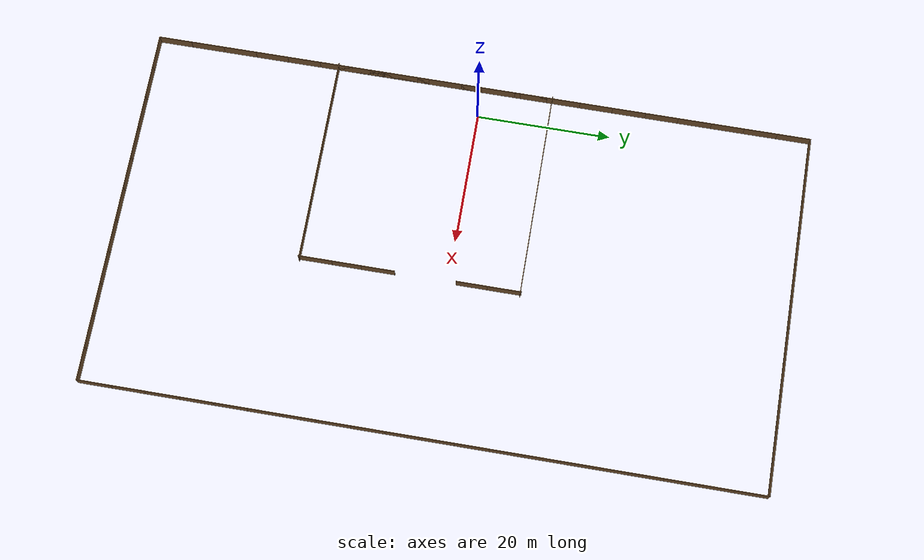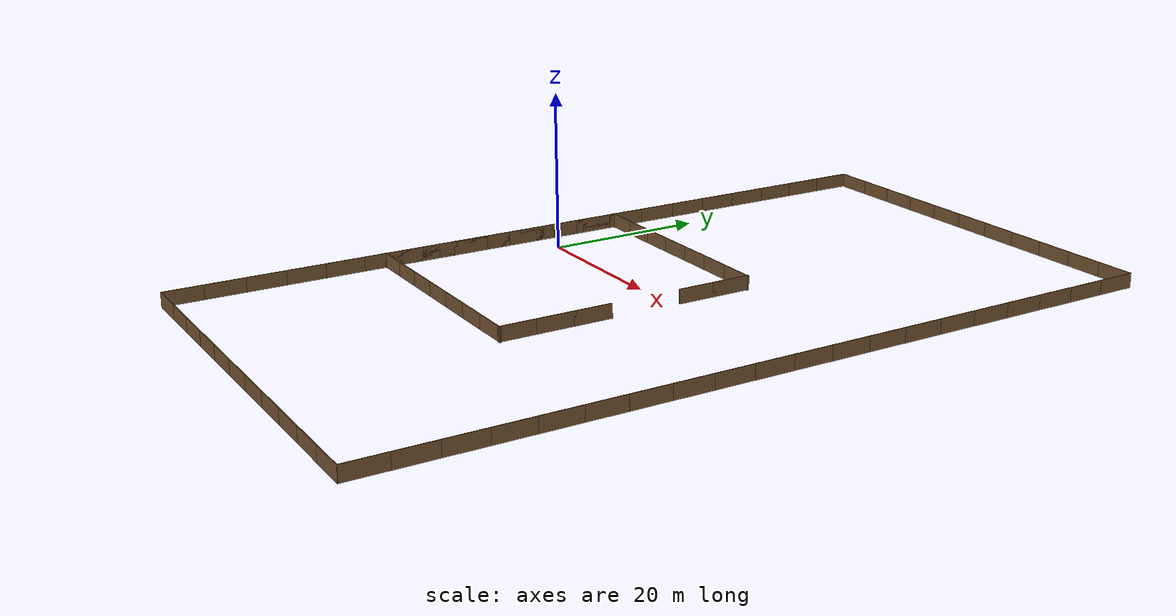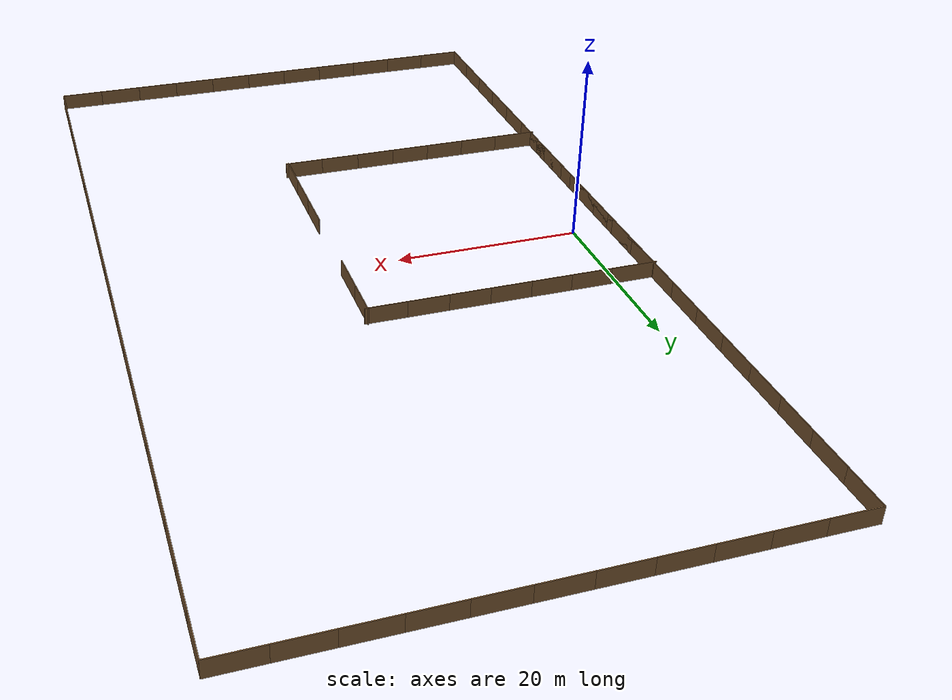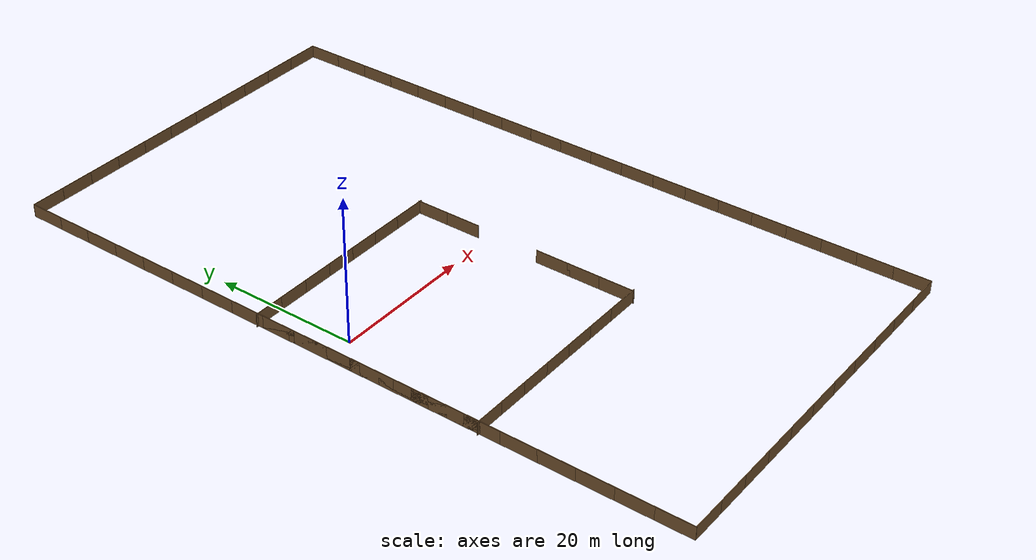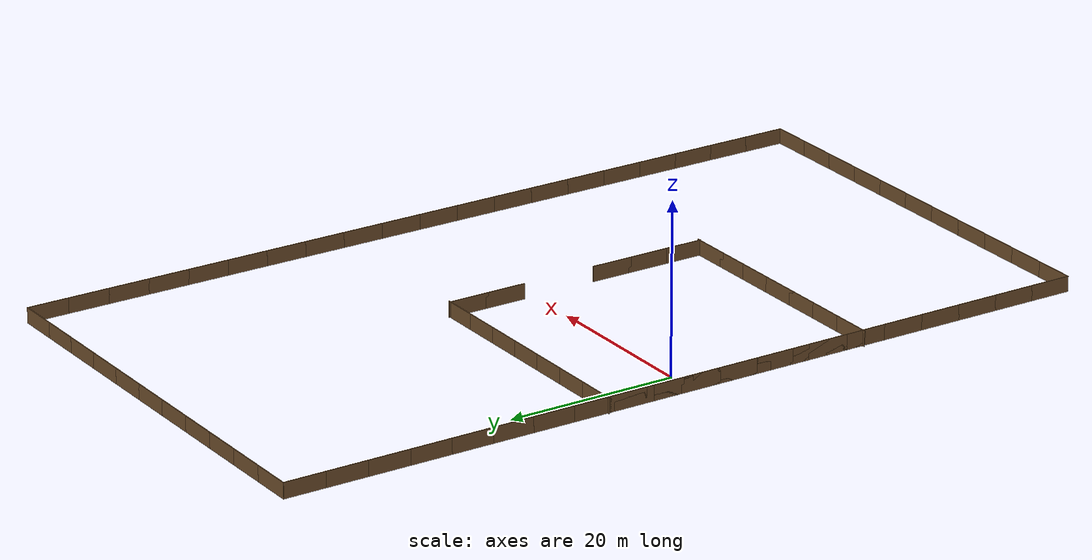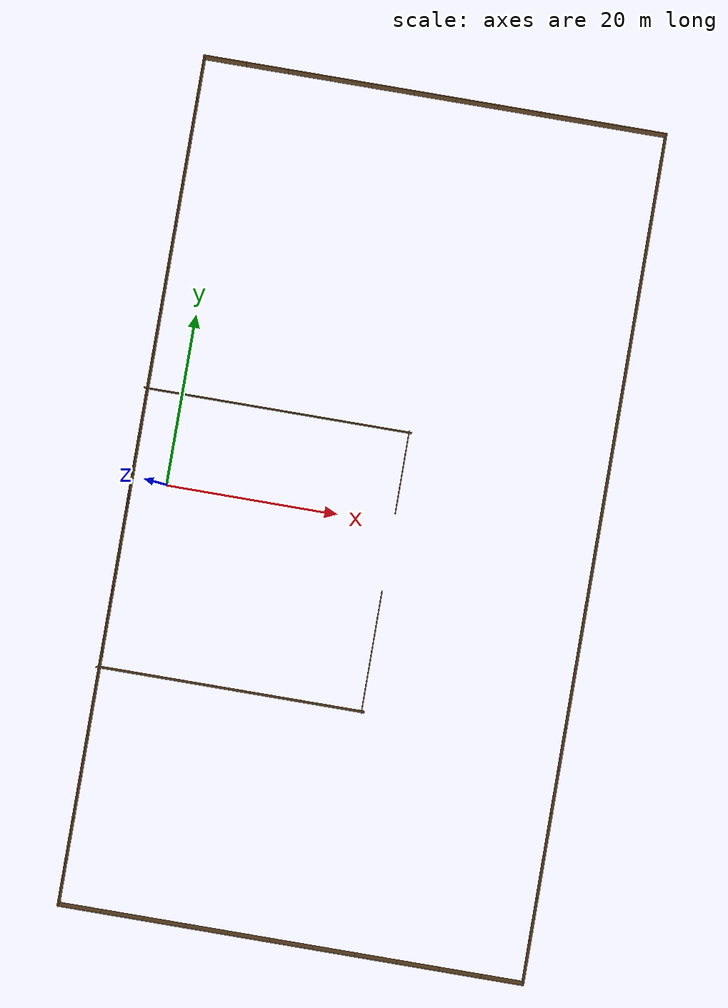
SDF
<sdf version="1.9">
 <world name="orchard_map_a">
  <physics name="fast" type="ode">
   <max_step_size>0.01</max_step_size>
   <real_time_factor>1.0</real_time_factor>
   <real_time_update_rate>100</real_time_update_rate>
  </physics>
  <plugin filename="ignition-gazebo-physics-system" name="ignition::gazebo::systems::Physics"/>
  <plugin filename="ignition-gazebo-user-commands-system" name="ignition::gazebo::systems::UserCommands"/>
  <plugin filename="ignition-gazebo-scene-broadcaster-system" name="ignition::gazebo::systems::SceneBroadcaster"/>
  <plugin filename="ignition-gazebo-sensors-system" name="ignition::gazebo::systems::Sensors">
   <render_engine>ogre2</render_engine>
  </plugin>
  <plugin filename="ignition-gazebo-imu-system" name="ignition::gazebo::systems::Imu"/>
  <plugin filename="ignition-gazebo-navsat-system" name="ignition::gazebo::systems::NavSat"/>
  <plugin filename="ignition-gazebo-contact-system" name="ignition::gazebo::systems::Contact"/>
  <spherical_coordinates>
   <surface_model>EARTH_WGS84</surface_model>
   <latitude_deg>37.3611</latitude_deg>
   <longitude_deg>-120.4322</longitude_deg>
   <elevation>0.0</elevation>
   <heading_deg>0</heading_deg>
  </spherical_coordinates>
  <gravity>0 0 -9.8</gravity>
  <light type="directional" name="sun">
   <cast_shadows>false</cast_shadows>
   <pose>0 0 20 0 0 0</pose>
   <diffuse>0.95 0.95 0.9 1</diffuse>
   <specular>0.3 0.3 0.3 1</specular>
   <direction>-0.3 0.1 -0.9</direction>
  </light>
  <light type="directional" name="fill">
   <cast_shadows>false</cast_shadows>
   <pose>0 0 10 0 0 0</pose>
   <diffuse>0.4 0.45 0.5 1</diffuse>
   <direction>0.5 -0.2 -0.5</direction>
  </light>
  <scene>
   <ambient>0.4 0.4 0.4 1</ambient>
   <background>0.7 0.75 0.85 1</background>
   <shadows>false</shadows>
  </scene>
  <include><uri>model://fence</uri><name>hfence_w_01</name><pose>-4.0000 -19.5882 0 0 0 0.0000</pose></include>
  <include><uri>model://fence</uri><name>hfence_w_02</name><pose>-4.0000 -14.9365 0 0 0 0.0000</pose></include>
  <include><uri>model://fence</uri><name>hfence_w_03</name><pose>-4.0000 -10.2847 0 0 0 0.0000</pose></include>
  <include><uri>model://fence</uri><name>hfence_w_04</name><pose>-4.0000 -5.6330 0 0 0 0.0000</pose></include>
  <include><uri>model://fence</uri><name>hfence_w_05</name><pose>-4.0000 -0.9813 0 0 0 0.0000</pose></include>
  <include><uri>model://fence</uri><name>hfence_w_06</name><pose>-4.0000 3.6705 0 0 0 0.0000</pose></include>
  <include><uri>model://fence</uri><name>hfence_w_07</name><pose>-4.0000 8.3222 0 0 0 0.0000</pose></include>
  <include><uri>model://fence</uri><name>hfence_e_08</name><pose>26.5555 -19.5882 0 0 0 0.0000</pose></include>
  <include><uri>model://fence</uri><name>hfence_e_09</name><pose>26.5555 -14.9365 0 0 0 0.0000</pose></include>
  <include><uri>model://fence</uri><name>hfence_e_10</name><pose>26.5555 -10.2847 0 0 0 0.0000</pose></include>
  <include><uri>model://fence</uri><name>hfence_e_11</name><pose>26.5555 3.6705 0 0 0 0.0000</pose></include>
  <include><uri>model://fence</uri><name>hfence_e_12</name><pose>26.5555 8.3222 0 0 0 0.0000</pose></include>
  <include><uri>model://fence</uri><name>hfence_s_13</name><pose>-1.8175 -21.9141 0 0 0 1.5708</pose></include>
  <include><uri>model://fence</uri><name>hfence_s_14</name><pose>2.5476 -21.9141 0 0 0 1.5708</pose></include>
  <include><uri>model://fence</uri><name>hfence_s_15</name><pose>6.9127 -21.9141 0 0 0 1.5708</pose></include>
  <include><uri>model://fence</uri><name>hfence_s_16</name><pose>11.2777 -21.9141 0 0 0 1.5708</pose></include>
  <include><uri>model://fence</uri><name>hfence_s_17</name><pose>15.6428 -21.9141 0 0 0 1.5708</pose></include>
  <include><uri>model://fence</uri><name>hfence_s_18</name><pose>20.0079 -21.9141 0 0 0 1.5708</pose></include>
  <include><uri>model://fence</uri><name>hfence_s_19</name><pose>24.3729 -21.9141 0 0 0 1.5708</pose></include>
  <include><uri>model://fence</uri><name>hfence_n_20</name><pose>-1.8175 10.6481 0 0 0 1.5708</pose></include>
  <include><uri>model://fence</uri><name>hfence_n_21</name><pose>2.5476 10.6481 0 0 0 1.5708</pose></include>
  <include><uri>model://fence</uri><name>hfence_n_22</name><pose>6.9127 10.6481 0 0 0 1.5708</pose></include>
  <include><uri>model://fence</uri><name>hfence_n_23</name><pose>11.2777 10.6481 0 0 0 1.5708</pose></include>
  <include><uri>model://fence</uri><name>hfence_n_24</name><pose>15.6428 10.6481 0 0 0 1.5708</pose></include>
  <include><uri>model://fence</uri><name>hfence_n_25</name><pose>20.0079 10.6481 0 0 0 1.5708</pose></include>
  <include><uri>model://fence</uri><name>hfence_n_26</name><pose>24.3729 10.6481 0 0 0 1.5708</pose></include>
  <include><uri>model://fence</uri><name>ofence_w_01</name><pose>-4.0000 -47.0250 0 0 0 0.0000</pose></include>
  <include><uri>model://fence</uri><name>ofence_w_02</name><pose>-4.0000 -42.0750 0 0 0 0.0000</pose></include>
  <include><uri>model://fence</uri><name>ofence_w_03</name><pose>-4.0000 -37.1250 0 0 0 0.0000</pose></include>
  <include><uri>model://fence</uri><name>ofence_w_04</name><pose>-4.0000 -32.1750 0 0 0 0.0000</pose></include>
  <include><uri>model://fence</uri><name>ofence_w_05</name><pose>-4.0000 -27.2250 0 0 0 0.0000</pose></include>
  <include><uri>model://fence</uri><name>ofence_w_06</name><pose>-4.0000 -22.2750 0 0 0 0.0000</pose></include>
  <include><uri>model://fence</uri><name>ofence_w_07</name><pose>-4.0000 -17.3250 0 0 0 0.0000</pose></include>
  <include><uri>model://fence</uri><name>ofence_w_08</name><pose>-4.0000 -12.3750 0 0 0 0.0000</pose></include>
  <include><uri>model://fence</uri><name>ofence_w_09</name><pose>-4.0000 -7.4250 0 0 0 0.0000</pose></include>
  <include><uri>model://fence</uri><name>ofence_w_10</name><pose>-4.0000 -2.4750 0 0 0 0.0000</pose></include>
  <include><uri>model://fence</uri><name>ofence_w_11</name><pose>-4.0000 2.4750 0 0 0 0.0000</pose></include>
  <include><uri>model://fence</uri><name>ofence_w_12</name><pose>-4.0000 7.4250 0 0 0 0.0000</pose></include>
  <include><uri>model://fence</uri><name>ofence_w_13</name><pose>-4.0000 12.3750 0 0 0 0.0000</pose></include>
  <include><uri>model://fence</uri><name>ofence_w_14</name><pose>-4.0000 17.3250 0 0 0 0.0000</pose></include>
  <include><uri>model://fence</uri><name>ofence_w_15</name><pose>-4.0000 22.2750 0 0 0 0.0000</pose></include>
  <include><uri>model://fence</uri><name>ofence_w_16</name><pose>-4.0000 27.2250 0 0 0 0.0000</pose></include>
  <include><uri>model://fence</uri><name>ofence_w_17</name><pose>-4.0000 32.1750 0 0 0 0.0000</pose></include>
  <include><uri>model://fence</uri><name>ofence_w_18</name><pose>-4.0000 37.1250 0 0 0 0.0000</pose></include>
  <include><uri>model://fence</uri><name>ofence_w_19</name><pose>-4.0000 42.0750 0 0 0 0.0000</pose></include>
  <include><uri>model://fence</uri><name>ofence_w_20</name><pose>-4.0000 47.0250 0 0 0 0.0000</pose></include>
  <include><uri>model://fence</uri><name>ofence_e_21</name><pose>50.0000 -47.0250 0 0 0 0.0000</pose></include>
  <include><uri>model://fence</uri><name>ofence_e_22</name><pose>50.0000 -42.0750 0 0 0 0.0000</pose></include>
  <include><uri>model://fence</uri><name>ofence_e_23</name><pose>50.0000 -37.1250 0 0 0 0.0000</pose></include>
  <include><uri>model://fence</uri><name>ofence_e_24</name><pose>50.0000 -32.1750 0 0 0 0.0000</pose></include>
  <include><uri>model://fence</uri><name>ofence_e_25</name><pose>50.0000 -27.2250 0 0 0 0.0000</pose></include>
  <include><uri>model://fence</uri><name>ofence_e_26</name><pose>50.0000 -22.2750 0 0 0 0.0000</pose></include>
  <include><uri>model://fence</uri><name>ofence_e_27</name><pose>50.0000 -17.3250 0 0 0 0.0000</pose></include>
  <include><uri>model://fence</uri><name>ofence_e_28</name><pose>50.0000 -12.3750 0 0 0 0.0000</pose></include>
  <include><uri>model://fence</uri><name>ofence_e_29</name><pose>50.0000 -7.4250 0 0 0 0.0000</pose></include>
  <include><uri>model://fence</uri><name>ofence_e_30</name><pose>50.0000 -2.4750 0 0 0 0.0000</pose></include>
  <include><uri>model://fence</uri><name>ofence_e_31</name><pose>50.0000 2.4750 0 0 0 0.0000</pose></include>
  <include><uri>model://fence</uri><name>ofence_e_32</name><pose>50.0000 7.4250 0 0 0 0.0000</pose></include>
  <include><uri>model://fence</uri><name>ofence_e_33</name><pose>50.0000 12.3750 0 0 0 0.0000</pose></include>
  <include><uri>model://fence</uri><name>ofence_e_34</name><pose>50.0000 17.3250 0 0 0 0.0000</pose></include>
  <include><uri>model://fence</uri><name>ofence_e_35</name><pose>50.0000 22.2750 0 0 0 0.0000</pose></include>
  <include><uri>model://fence</uri><name>ofence_e_36</name><pose>50.0000 27.2250 0 0 0 0.0000</pose></include>
  <include><uri>model://fence</uri><name>ofence_e_37</name><pose>50.0000 32.1750 0 0 0 0.0000</pose></include>
  <include><uri>model://fence</uri><name>ofence_e_38</name><pose>50.0000 37.1250 0 0 0 0.0000</pose></include>
  <include><uri>model://fence</uri><name>ofence_e_39</name><pose>50.0000 42.0750 0 0 0 0.0000</pose></include>
  <include><uri>model://fence</uri><name>ofence_e_40</name><pose>50.0000 47.0250 0 0 0 0.0000</pose></include>
  <include><uri>model://fence</uri><name>ofence_s_41</name><pose>-1.5455 -49.5000 0 0 0 1.5708</pose></include>
  <include><uri>model://fence</uri><name>ofence_s_42</name><pose>3.3636 -49.5000 0 0 0 1.5708</pose></include>
  <include><uri>model://fence</uri><name>ofence_s_43</name><pose>8.2727 -49.5000 0 0 0 1.5708</pose></include>
  <include><uri>model://fence</uri><name>ofence_s_44</name><pose>13.1818 -49.5000 0 0 0 1.5708</pose></include>
  <include><uri>model://fence</uri><name>ofence_s_45</name><pose>18.0909 -49.5000 0 0 0 1.5708</pose></include>
  <include><uri>model://fence</uri><name>ofence_s_46</name><pose>23.0000 -49.5000 0 0 0 1.5708</pose></include>
  <include><uri>model://fence</uri><name>ofence_s_47</name><pose>27.9091 -49.5000 0 0 0 1.5708</pose></include>
  <include><uri>model://fence</uri><name>ofence_s_48</name><pose>32.8182 -49.5000 0 0 0 1.5708</pose></include>
  <include><uri>model://fence</uri><name>ofence_s_49</name><pose>37.7273 -49.5000 0 0 0 1.5708</pose></include>
  <include><uri>model://fence</uri><name>ofence_s_50</name><pose>42.6364 -49.5000 0 0 0 1.5708</pose></include>
  <include><uri>model://fence</uri><name>ofence_s_51</name><pose>47.5455 -49.5000 0 0 0 1.5708</pose></include>
  <include><uri>model://fence</uri><name>ofence_n_52</name><pose>-1.5455 49.5000 0 0 0 1.5708</pose></include>
  <include><uri>model://fence</uri><name>ofence_n_53</name><pose>3.3636 49.5000 0 0 0 1.5708</pose></include>
  <include><uri>model://fence</uri><name>ofence_n_54</name><pose>8.2727 49.5000 0 0 0 1.5708</pose></include>
  <include><uri>model://fence</uri><name>ofence_n_55</name><pose>13.1818 49.5000 0 0 0 1.5708</pose></include>
  <include><uri>model://fence</uri><name>ofence_n_56</name><pose>18.0909 49.5000 0 0 0 1.5708</pose></include>
  <include><uri>model://fence</uri><name>ofence_n_57</name><pose>23.0000 49.5000 0 0 0 1.5708</pose></include>
  <include><uri>model://fence</uri><name>ofence_n_58</name><pose>27.9091 49.5000 0 0 0 1.5708</pose></include>
  <include><uri>model://fence</uri><name>ofence_n_59</name><pose>32.8182 49.5000 0 0 0 1.5708</pose></include>
  <include><uri>model://fence</uri><name>ofence_n_60</name><pose>37.7273 49.5000 0 0 0 1.5708</pose></include>
  <include><uri>model://fence</uri><name>ofence_n_61</name><pose>42.6364 49.5000 0 0 0 1.5708</pose></include>
  <include><uri>model://fence</uri><name>ofence_n_62</name><pose>47.5455 49.5000 0 0 0 1.5708</pose></include>
 </world>
</sdf>

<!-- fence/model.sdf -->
<sdf version="1.5">
  <model name="fence">
    <static>true</static>
    <link name="link">
      <pose>0 0 0.915 0 0 0</pose>
      <collision name="collision">
        <geometry>
          <box>
            <size>0.1 5. 1.83</size>
          </box>
        </geometry>
      </collision>
      <visual name="visual">
        <cast_shadows>false</cast_shadows>
        <geometry>
          <box>
            <size>0.1 5. 1.83</size>
          </box>
        </geometry>
        <material>
          <ambient>0.35 0.25 0.15 1</ambient>
          <diffuse>0.45 0.32 0.18 1</diffuse>
          <specular>0.1 0.1 0.1 1</specular>
          <pbr>
            <metal>
              <albedo_map>model://fence/materials/textures/woodboarding4.jpg</albedo_map>
              <metalness>0.0</metalness>
              <roughness>0.8</roughness>
            </metal>
          </pbr>
        </material>
      </visual>
    </link>
  </model>
</sdf>
